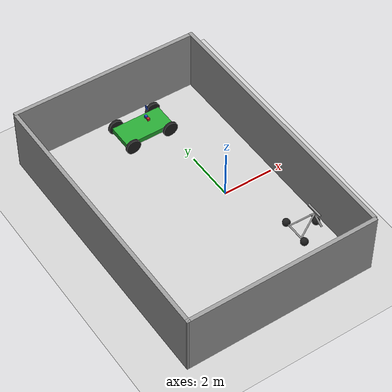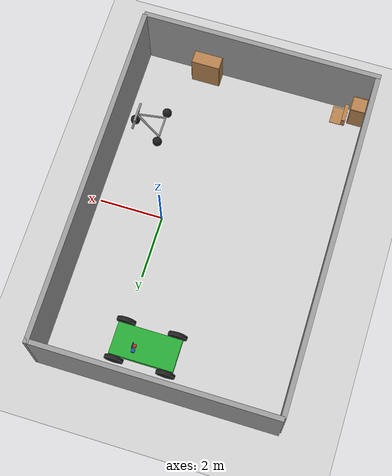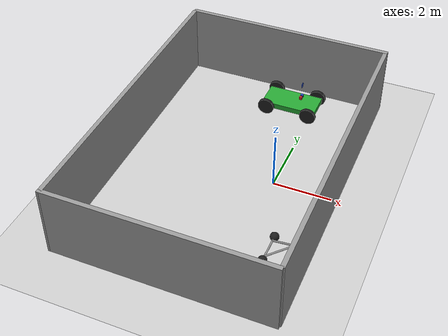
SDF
<sdf version="1.6">
 <world name="default">
  <light name="sun" type="directional">
   <pose>0 0 10 0 -0 0</pose>
   <diffuse>0.8 0.8 0.8 1</diffuse>
   <specular>0.2 0.2 0.2 1</specular>
   <attenuation>
    <range>1000</range>
    <constant>0.9</constant>
    <linear>0.01</linear>
    <quadratic>0.001</quadratic>
   </attenuation>
   <direction>-0.5 0.1 -0.9</direction>
  </light>
  <model name="ground_plane">
   <static>1</static>
   <link name="link">
    <collision name="collision">
     <geometry><plane><normal>0 0 1</normal><size>100 100</size></plane></geometry>
     <surface><friction><ode><mu>100</mu><mu2>50</mu2></ode></friction></surface>
    </collision>
    <visual name="visual">
     <cast_shadows>0</cast_shadows>
     <geometry><plane><normal>0 0 1</normal><size>100 100</size></plane></geometry>
     <material>
      <script><uri>file://media/materials/scripts/gazebo.material</uri><name>Gazebo/Grey</name></script>
     </material>
    </visual>
    <velocity_decay><linear>0</linear><angular>0</angular></velocity_decay>
   </link>
  </model>
  <physics name="default_physics" default="0" type="ode">
   <max_step_size>0.001</max_step_size>
   <real_time_factor>1</real_time_factor>
   <real_time_update_rate>1000</real_time_update_rate>
  </physics>
  <scene><ambient>0.4 0.4 0.4 1</ambient><background>0.7 0.7 0.7 1</background><shadows>1</shadows></scene>
  <spherical_coordinates>
   <surface_model>EARTH_WGS84</surface_model>
   <latitude_deg>0</latitude_deg>
   <longitude_deg>0</longitude_deg>
   <elevation>0</elevation>
   <heading_deg>0</heading_deg>
  </spherical_coordinates>
  <gravity>0 0 -9.8</gravity>
  <magnetic_field>6e-06 2.3e-05 -4.2e-05</magnetic_field>
  <atmosphere type="adiabatic"/>
  <model name="rectwall">
   <pose>-1.55006 -0.03167 0 0 -0 0</pose>
   <link name="Wall_11">
    <collision name="Wall_11_Collision">
     <geometry><box><size>7.5 0.15 2.5</size></box></geometry>
     <pose>0 0 1.25 0 -0 0</pose>
    </collision>
    <visual name="Wall_11_Visual">
     <pose>0 0 1.25 0 -0 0</pose>
     <geometry><box><size>7.5 0.15 2.5</size></box></geometry>
     <material>
      <script><uri>file://media/materials/scripts/gazebo.material</uri><name>Gazebo/Grey</name></script>
      <ambient>1 1 1 1</ambient>
     </material>
     <meta><layer>0</layer></meta>
    </visual>
    <pose>0.001539 5.3704 0 0 -0 3.14159</pose>
   </link>
   <link name="Wall_13">
    <collision name="Wall_13_Collision">
     <geometry><box><size>7.5 0.15 2.5</size></box></geometry>
     <pose>0 0 1.25 0 -0 0</pose>
    </collision>
    <visual name="Wall_13_Visual">
     <pose>0 0 1.25 0 -0 0</pose>
     <geometry><box><size>7.5 0.15 2.5</size></box></geometry>
     <material>
      <script><uri>file://media/materials/scripts/gazebo.material</uri><name>Gazebo/Grey</name></script>
      <ambient>1 1 1 1</ambient>
     </material>
     <meta><layer>0</layer></meta>
    </visual>
    <pose>-0.001539 -5.3704 0 0 -0 0</pose>
   </link>
   <link name="Wall_6">
    <collision name="Wall_6_Collision">
     <geometry><box><size>10.7903 0.15 2.5</size></box></geometry>
     <pose>0 0 1.25 0 -0 0</pose>
    </collision>
    <visual name="Wall_6_Visual">
     <pose>0 0 1.25 0 -0 0</pose>
     <geometry><box><size>10.7903 0.15 2.5</size></box></geometry>
     <material>
      <script><uri>file://media/materials/scripts/gazebo.material</uri><name>Gazebo/Grey</name></script>
      <ambient>1 1 1 1</ambient>
     </material>
     <meta><layer>0</layer></meta>
    </visual>
    <pose>-3.69665 -0.050284 0 0 0 -1.56702</pose>
   </link>
   <link name="Wall_8">
    <collision name="Wall_8_Collision">
     <geometry><box><size>10.7903 0.15 2.5</size></box></geometry>
     <pose>0 0 1.25 0 -0 0</pose>
    </collision>
    <visual name="Wall_8_Visual">
     <pose>0 0 1.25 0 -0 0</pose>
     <geometry><box><size>10.7903 0.15 2.5</size></box></geometry>
     <material>
      <script><uri>file://media/materials/scripts/gazebo.material</uri><name>Gazebo/Grey</name></script>
      <ambient>1 1 1 1</ambient>
     </material>
     <meta><layer>0</layer></meta>
    </visual>
    <pose>3.69665 0.050284 0 0 -0 1.57458</pose>
   </link>
   <static>1</static>
  </model>
  <model name="cabinet_clone">
   <static>1</static>
   <link name="cabinet_bottom_plate">
    <inertial>
     <pose>0 0 -1 0 -0 0</pose>
     <inertia><ixx>2.05</ixx><ixy>0</ixy><ixz>0</ixz><iyy>2.05</iyy><iyz>0</iyz><izz>2.05</izz></inertia>
     <mass>25</mass>
    </inertial>
    <collision name="cabinet_bottom_plate_geom">
     <pose>0 0 0.01 0 -0 0</pose>
     <geometry><box><size>0.45 0.45 0.02</size></box></geometry>
    </collision>
    <visual name="cabinet_bottom_plate_geom_visual">
     <pose>0 0 0.01 0 -0 0</pose>
     <geometry><box><size>0.45 0.45 0.02</size></box></geometry>
     <material>
      <script><uri>file://media/materials/scripts/gazebo.material</uri><name>Gazebo/Wood</name></script>
     </material>
    </visual>
    <collision name="cabinet_bottom_plate_geom_cabinet_back_plate">
     <pose>0.235 0 0.51 0 -0 0</pose>
     <geometry><box><size>0.02 0.45 1.02</size></box></geometry>
    </collision>
    <visual name="cabinet_bottom_plate_geom_cabinet_back_plate_visual">
     <pose>0.235 0 0.51 0 -0 0</pose>
     <geometry><box><size>0.02 0.45 1.02</size></box></geometry>
     <material>
      <script><uri>file://media/materials/scripts/gazebo.material</uri><name>Gazebo/Wood</name></script>
     </material>
    </visual>
    <collision name="cabinet_bottom_plate_geom_cabinet_left_plate">
     <pose>0 0.235 0.51 0 -0 0</pose>
     <geometry><box><size>0.45 0.02 1.02</size></box></geometry>
    </collision>
    <visual name="cabinet_bottom_plate_geom_cabinet_left_plate_visual">
     <pose>0 0.235 0.51 0 -0 0</pose>
     <geometry><box><size>0.45 0.02 1.02</size></box></geometry>
     <material>
      <script><uri>file://media/materials/scripts/gazebo.material</uri><name>Gazebo/Wood</name></script>
     </material>
    </visual>
    <collision name="cabinet_bottom_plate_geom_cabinet_middle_plate">
     <pose>0 0 0.51 0 -0 0</pose>
     <geometry><box><size>0.45 0.45 0.02</size></box></geometry>
    </collision>
    <visual name="cabinet_bottom_plate_geom_cabinet_middle_plate_visual">
     <pose>0 0 0.51 0 -0 0</pose>
     <geometry><box><size>0.45 0.45 0.02</size></box></geometry>
     <material>
      <script><uri>file://media/materials/scripts/gazebo.material</uri><name>Gazebo/Wood</name></script>
     </material>
    </visual>
    <collision name="cabinet_bottom_plate_geom_cabinet_right_plate">
     <pose>0 -0.235 0.51 0 -0 0</pose>
     <geometry><box><size>0.45 0.02 1.02</size></box></geometry>
    </collision>
    <visual name="cabinet_bottom_plate_geom_cabinet_right_plate_visual">
     <pose>0 -0.235 0.51 0 -0 0</pose>
     <geometry><box><size>0.45 0.02 1.02</size></box></geometry>
     <material>
      <script><uri>file://media/materials/scripts/gazebo.material</uri><name>Gazebo/Wood</name></script>
     </material>
    </visual>
    <collision name="cabinet_bottom_plate_geom_cabinet_top_plate">
     <pose>0 0 1.01 0 -0 0</pose>
     <geometry><box><size>0.45 0.45 0.02</size></box></geometry>
    </collision>
    <visual name="cabinet_bottom_plate_geom_cabinet_top_plate_visual">
     <pose>0 0 1.01 0 -0 0</pose>
     <geometry><box><size>0.45 0.45 0.02</size></box></geometry>
     <material>
      <script><uri>file://media/materials/scripts/gazebo.material</uri><name>Gazebo/Wood</name></script>
     </material>
    </visual>
   </link>
   <pose>-4.91383 -5.06603 0 0 -0 0</pose>
  </model>
  <model name="wooden_case">
   <link name="base">
    <pose>0 0 0.024 0 -0 0</pose>
    <inertial>
     <pose>-0.022184 0 0.171592 0 -0 0</pose>
     <mass>3.96264</mass>
     <inertia>
      <ixx>0.213536</ixx>
      <ixy>0</ixy>
      <ixz>0.000779377</ixz>
      <iyy>0.0708943</iyy>
      <iyz>0</iyz>
      <izz>0.154604</izz>
     </inertia>
    </inertial>
    <collision name="collision_back">
     <pose>-0.053975 0 0.1778 0 -0 0</pose>
     <geometry><box><size>0.01905 0.5461 0.3175</size></box></geometry>
     <surface>
      <contact>
       <poissons_ratio>0.347</poissons_ratio>
       <elastic_modulus>8.8e+09</elastic_modulus>
       <ode><kp>100000</kp><kd>100</kd><max_vel>100</max_vel><min_depth>0.001</min_depth></ode>
      </contact>
      <friction>
       <torsional>
        <coefficient>1</coefficient>
        <use_patch_radius>0</use_patch_radius>
        <surface_radius>0.01</surface_radius>
       </torsional>
      </friction>
     </surface>
    </collision>
    <visual name="visual_back">
     <pose>-0.053975 0 0.1778 0 -0 0</pose>
     <geometry><box><size>0.01905 0.5461 0.3175</size></box></geometry>
     <material>
      <script><uri>file://media/materials/scripts/gazebo.material</uri><name>Gazebo/Wood</name></script>
     </material>
    </visual>
    <collision name="collision_bottom">
     <pose>0 0 0.009525 0 -0 0</pose>
     <geometry><box><size>0.127 0.5842 0.01905</size></box></geometry>
     <surface>
      <contact>
       <poissons_ratio>0.347</poissons_ratio>
       <elastic_modulus>8.8e+09</elastic_modulus>
       <ode><kp>100000</kp><kd>100</kd><max_vel>100</max_vel><min_depth>0.001</min_depth></ode>
      </contact>
      <friction>
       <torsional>
        <coefficient>1</coefficient>
        <use_patch_radius>0</use_patch_radius>
        <surface_radius>0.01</surface_radius>
       </torsional>
      </friction>
     </surface>
    </collision>
    <visual name="visual_bottom">
     <pose>0 0 0.009525 0 -0 0</pose>
     <geometry><box><size>0.127 0.5842 0.01905</size></box></geometry>
     <material>
      <script><uri>file://media/materials/scripts/gazebo.material</uri><name>Gazebo/Wood</name></script>
     </material>
    </visual>
    <collision name="collision_top">
     <pose>0 0 0.346075 0 -0 0</pose>
     <geometry><box><size>0.127 0.5842 0.01905</size></box></geometry>
     <surface>
      <contact>
       <poissons_ratio>0.347</poissons_ratio>
       <elastic_modulus>8.8e+09</elastic_modulus>
       <ode><kp>100000</kp><kd>100</kd><max_vel>100</max_vel><min_depth>0.001</min_depth></ode>
      </contact>
      <friction>
       <torsional>
        <coefficient>1</coefficient>
        <use_patch_radius>0</use_patch_radius>
        <surface_radius>0.01</surface_radius>
       </torsional>
      </friction>
     </surface>
    </collision>
    <visual name="visual_top">
     <pose>0 0 0.346075 0 -0 0</pose>
     <geometry><box><size>0.127 0.5842 0.01905</size></box></geometry>
     <material>
      <script><uri>file://media/materials/scripts/gazebo.material</uri><name>Gazebo/Wood</name></script>
     </material>
    </visual>
    <collision name="collision_left">
     <pose>0 -0.282575 0.1778 0 -0 0</pose>
     <geometry><box><size>0.127 0.01905 0.3175</size></box></geometry>
     <surface>
      <contact>
       <poissons_ratio>0.347</poissons_ratio>
       <elastic_modulus>8.8e+09</elastic_modulus>
       <ode><kp>100000</kp><kd>100</kd><max_vel>100</max_vel><min_depth>0.001</min_depth></ode>
      </contact>
      <friction>
       <torsional>
        <coefficient>1</coefficient>
        <use_patch_radius>0</use_patch_radius>
        <surface_radius>0.01</surface_radius>
       </torsional>
      </friction>
     </surface>
    </collision>
    <visual name="visual_left">
     <pose>0 -0.282575 0.1778 0 -0 0</pose>
     <geometry><box><size>0.127 0.01905 0.3175</size></box></geometry>
     <material>
      <script><uri>file://media/materials/scripts/gazebo.material</uri><name>Gazebo/Wood</name></script>
     </material>
    </visual>
    <collision name="collision_right">
     <pose>0 0.282575 0.1778 0 -0 0</pose>
     <geometry><box><size>0.127 0.01905 0.3175</size></box></geometry>
     <surface>
      <contact>
       <poissons_ratio>0.347</poissons_ratio>
       <elastic_modulus>8.8e+09</elastic_modulus>
       <ode><kp>100000</kp><kd>100</kd><max_vel>100</max_vel><min_depth>0.001</min_depth></ode>
      </contact>
      <friction>
       <torsional>
        <coefficient>1</coefficient>
        <use_patch_radius>0</use_patch_radius>
        <surface_radius>0.01</surface_radius>
       </torsional>
      </friction>
     </surface>
    </collision>
    <visual name="visual_right">
     <pose>0 0.282575 0.1778 0 -0 0</pose>
     <geometry><box><size>0.127 0.01905 0.3175</size></box></geometry>
     <material>
      <script><uri>file://media/materials/scripts/gazebo.material</uri><name>Gazebo/Wood</name></script>
     </material>
    </visual>
    <collision name="collision_block_left">
     <pose>0.0095 -0.2151 -0.012 0 -0 0</pose>
     <geometry><box><size>0.108 0.05 0.024</size></box></geometry>
     <surface>
      <contact>
       <poissons_ratio>0.347</poissons_ratio>
       <elastic_modulus>8.8e+09</elastic_modulus>
       <ode><kp>100000</kp><kd>100</kd><max_vel>100</max_vel><min_depth>0.001</min_depth></ode>
      </contact>
      <friction>
       <torsional>
        <coefficient>1</coefficient>
        <use_patch_radius>0</use_patch_radius>
        <surface_radius>0.01</surface_radius>
       </torsional>
      </friction>
     </surface>
    </collision>
    <visual name="visual_block_left">
     <pose>0.0095 -0.2151 -0.012 0 -0 0</pose>
     <geometry><box><size>0.108 0.05 0.024</size></box></geometry>
     <material>
      <script><uri>file://media/materials/scripts/gazebo.material</uri><name>Gazebo/Wood</name></script>
     </material>
    </visual>
    <collision name="collision_block_right">
     <pose>0.0095 0.2151 -0.012 0 -0 0</pose>
     <geometry><box><size>0.108 0.05 0.024</size></box></geometry>
     <surface>
      <contact>
       <poissons_ratio>0.347</poissons_ratio>
       <elastic_modulus>8.8e+09</elastic_modulus>
       <ode><kp>100000</kp><kd>100</kd><max_vel>100</max_vel><min_depth>0.001</min_depth></ode>
      </contact>
      <friction>
       <torsional>
        <coefficient>1</coefficient>
        <use_patch_radius>0</use_patch_radius>
        <surface_radius>0.01</surface_radius>
       </torsional>
      </friction>
     </surface>
    </collision>
    <visual name="visual_block_right">
     <pose>0.0095 0.2151 -0.012 0 -0 0</pose>
     <geometry><box><size>0.108 0.05 0.024</size></box></geometry>
     <material>
      <script><uri>file://media/materials/scripts/gazebo.material</uri><name>Gazebo/Wood</name></script>
     </material>
    </visual>
   </link>
   <link name="lid">
    <pose>0.243775 0 0.009525 0 -0 0</pose>
    <inertial>
     <mass>1.97874</mass>
     <inertia>
      <ixx>0.0563367</ixx>
      <ixy>0</ixy>
      <ixz>0</ixz>
      <iyy>0.020911</iyy>
      <iyz>0</iyz>
      <izz>0.0771281</izz>
     </inertia>
    </inertial>
    <collision name="collision">
     <geometry><box><size>0.3556 0.5842 0.01905</size></box></geometry>
     <surface>
      <contact>
       <poissons_ratio>0.347</poissons_ratio>
       <elastic_modulus>8.8e+09</elastic_modulus>
       <ode><kp>100000</kp><kd>100</kd><max_vel>100</max_vel><min_depth>0.001</min_depth></ode>
      </contact>
      <friction>
       <torsional>
        <coefficient>1</coefficient>
        <use_patch_radius>0</use_patch_radius>
        <surface_radius>0.01</surface_radius>
       </torsional>
      </friction>
     </surface>
    </collision>
    <visual name="visual">
     <geometry><box><size>0.3556 0.5842 0.01905</size></box></geometry>
     <material>
      <script><uri>file://media/materials/scripts/gazebo.material</uri><name>Gazebo/Wood</name></script>
     </material>
    </visual>
    <visual name="tee_nut_1">
     <pose>0.122 -0.216 0 0 -0 0</pose>
     <geometry><cylinder><radius>0.00635</radius><length>0.0192405</length></cylinder></geometry>
     <material>
      <script><uri>file://media/materials/scripts/gazebo.material</uri><name>Gazebo/Grey</name></script>
     </material>
    </visual>
    <visual name="tee_nut_2">
     <pose>0.122 -0.088 0 0 -0 0</pose>
     <geometry><cylinder><radius>0.00635</radius><length>0.0192405</length></cylinder></geometry>
     <material>
      <script><uri>file://media/materials/scripts/gazebo.material</uri><name>Gazebo/Grey</name></script>
     </material>
    </visual>
    <visual name="tee_nut_3">
     <pose>0.122 0.088 0 0 -0 0</pose>
     <geometry><cylinder><radius>0.00635</radius><length>0.0192405</length></cylinder></geometry>
     <material>
      <script><uri>file://media/materials/scripts/gazebo.material</uri><name>Gazebo/Grey</name></script>
     </material>
    </visual>
    <visual name="tee_nut_4">
     <pose>0.122 0.216 0 0 -0 0</pose>
     <geometry><cylinder><radius>0.00635</radius><length>0.0192405</length></cylinder></geometry>
     <material>
      <script><uri>file://media/materials/scripts/gazebo.material</uri><name>Gazebo/Grey</name></script>
     </material>
    </visual>
   </link>
   <joint name="lid_hinge" type="revolute">
    <pose>-0.1778 0 0.01905 0 -0 0</pose>
    <parent>base</parent>
    <child>lid</child>
    <axis>
     <xyz>0 1 0</xyz>
     <limit><upper>0.523599</upper><lower>-1.5708</lower></limit>
     <use_parent_model_frame>0</use_parent_model_frame>
     <dynamics><spring_reference>0</spring_reference><spring_stiffness>0</spring_stiffness></dynamics>
    </axis>
   </joint>
   <pose>-4.55455 -4.99191 -0.001057 0 -0.000429 0</pose>
  </model>
  <model name="car">
   <link name="chassis">
    <pose>0 0 0.3 0 -0 0</pose>
    <collision name="collision"><geometry><box><size>2 1 0.2</size></box></geometry></collision>
    <visual name="visual">
     <geometry><box><size>2 1 0.2</size></box></geometry>
     <material>
      <script><uri>file://media/materials/scripts/gazebo.material</uri><name>Gazebo/Green</name></script>
     </material>
    </visual>
    <inertial>
     <inertia><ixx>1</ixx><ixy>0</ixy><ixz>0</ixz><iyy>1</iyy><iyz>0</iyz><izz>1</izz></inertia>
     <mass>1</mass>
    </inertial>
   </link>
   <link name="front_left_wheel">
    <pose>0.8 0.6 0.3 -0 1.5707 1.5707</pose>
    <collision name="collision">
     <geometry><cylinder><radius>0.3</radius><length>0.1</length></cylinder></geometry>
    </collision>
    <visual name="visual">
     <geometry><cylinder><radius>0.3</radius><length>0.1</length></cylinder></geometry>
     <material>
      <script><uri>file://media/materials/scripts/gazebo.material</uri><name>Gazebo/Black</name></script>
     </material>
    </visual>
    <inertial>
     <inertia><ixx>1</ixx><ixy>0</ixy><ixz>0</ixz><iyy>1</iyy><iyz>0</iyz><izz>1</izz></inertia>
     <mass>1</mass>
    </inertial>
   </link>
   <link name="front_right_wheel">
    <pose>0.8 -0.6 0.3 -0 1.5707 1.5707</pose>
    <collision name="collision">
     <geometry><cylinder><radius>0.3</radius><length>0.1</length></cylinder></geometry>
    </collision>
    <visual name="visual">
     <geometry><cylinder><radius>0.3</radius><length>0.1</length></cylinder></geometry>
     <material>
      <script><uri>file://media/materials/scripts/gazebo.material</uri><name>Gazebo/Black</name></script>
     </material>
    </visual>
    <inertial>
     <inertia><ixx>1</ixx><ixy>0</ixy><ixz>0</ixz><iyy>1</iyy><iyz>0</iyz><izz>1</izz></inertia>
     <mass>1</mass>
    </inertial>
   </link>
   <link name="back_right_wheel">
    <pose>-0.8 -0.6 0.3 -0 1.5707 1.5707</pose>
    <collision name="collision">
     <geometry><cylinder><radius>0.3</radius><length>0.1</length></cylinder></geometry>
    </collision>
    <visual name="visual">
     <geometry><cylinder><radius>0.3</radius><length>0.1</length></cylinder></geometry>
     <material>
      <script><uri>file://media/materials/scripts/gazebo.material</uri><name>Gazebo/Black</name></script>
     </material>
    </visual>
    <inertial>
     <inertia><ixx>1</ixx><ixy>0</ixy><ixz>0</ixz><iyy>1</iyy><iyz>0</iyz><izz>1</izz></inertia>
     <mass>1</mass>
    </inertial>
   </link>
   <link name="back_left_wheel">
    <pose>-0.8 0.6 0.3 -0 1.5707 1.5707</pose>
    <collision name="collision">
     <geometry><cylinder><radius>0.3</radius><length>0.1</length></cylinder></geometry>
    </collision>
    <visual name="visual">
     <geometry><cylinder><radius>0.3</radius><length>0.1</length></cylinder></geometry>
     <material>
      <script><uri>file://media/materials/scripts/gazebo.material</uri><name>Gazebo/Black</name></script>
     </material>
    </visual>
    <inertial>
     <inertia><ixx>1</ixx><ixy>0</ixy><ixz>0</ixz><iyy>1</iyy><iyz>0</iyz><izz>1</izz></inertia>
     <mass>1</mass>
    </inertial>
   </link>
   <link name="gas_pedal">
    <pose>0.3 0.1 0.5 0 -0 0</pose>
    <collision name="collision"><geometry><box><size>0.1 0.1 0.1</size></box></geometry></collision>
    <visual name="visual">
     <geometry><box><size>0.1 0.1 0.1</size></box></geometry>
     <material>
      <script><uri>file://media/materials/scripts/gazebo.material</uri><name>Gazebo/Red</name></script>
     </material>
    </visual>
    <inertial>
     <inertia><ixx>1</ixx><ixy>0</ixy><ixz>0</ixz><iyy>1</iyy><iyz>0</iyz><izz>1</izz></inertia>
     <mass>1</mass>
    </inertial>
   </link>
   <link name="brake_pedal">
    <pose>0.3 0.25 0.5 0 -0 0</pose>
    <collision name="collision"><geometry><box><size>0.1 0.1 0.1</size></box></geometry></collision>
    <visual name="visual">
     <geometry><box><size>0.1 0.1 0.1</size></box></geometry>
     <material>
      <script><uri>file://media/materials/scripts/gazebo.material</uri><name>Gazebo/Blue</name></script>
     </material>
    </visual>
    <inertial>
     <inertia><ixx>1</ixx><ixy>0</ixy><ixz>0</ixz><iyy>1</iyy><iyz>0</iyz><izz>1</izz></inertia>
     <mass>1</mass>
    </inertial>
   </link>
   <link name="steering_wheel">
    <pose>0.3 0.2 1 0 1.5707 0</pose>
    <collision name="collision">
     <geometry><cylinder><radius>0.1</radius><length>0.01</length></cylinder></geometry>
    </collision>
    <visual name="visual">
     <geometry><cylinder><radius>0.1</radius><length>0.01</length></cylinder></geometry>
     <material>
      <script><uri>file://media/materials/scripts/gazebo.material</uri><name>Gazebo/Blue</name></script>
     </material>
    </visual>
    <inertial>
     <inertia><ixx>1</ixx><ixy>0</ixy><ixz>0</ixz><iyy>1</iyy><iyz>0</iyz><izz>1</izz></inertia>
     <mass>1</mass>
    </inertial>
   </link>
   <joint name="gas_joint" type="prismatic">
    <parent>chassis</parent>
    <child>gas_pedal</child>
    <axis>
     <xyz>1 0 0</xyz>
     <limit><lower>0</lower><upper>0.2</upper></limit>
     <use_parent_model_frame>1</use_parent_model_frame>
     <dynamics><spring_reference>0</spring_reference><spring_stiffness>0</spring_stiffness></dynamics>
    </axis>
   </joint>
   <joint name="brake_joint" type="prismatic">
    <parent>chassis</parent>
    <child>brake_pedal</child>
    <axis>
     <xyz>1 0 0</xyz>
     <limit><lower>0</lower><upper>0.2</upper></limit>
     <use_parent_model_frame>1</use_parent_model_frame>
     <dynamics><spring_reference>0</spring_reference><spring_stiffness>0</spring_stiffness></dynamics>
    </axis>
   </joint>
   <joint name="steering_joint" type="revolute">
    <parent>chassis</parent>
    <child>steering_wheel</child>
    <axis>
     <xyz>1 0 0</xyz>
     <limit><lower>-7.853</lower><upper>7.853</upper></limit>
     <use_parent_model_frame>1</use_parent_model_frame>
     <dynamics><spring_reference>0</spring_reference><spring_stiffness>0</spring_stiffness></dynamics>
    </axis>
   </joint>
   <joint name="front_left_joint" type="revolute2">
    <parent>chassis</parent>
    <child>front_left_wheel</child>
    <axis>
     <xyz>0 0 1</xyz>
     <limit><lower>8.63927e-06</lower><upper>8.63927e-06</upper></limit>
     <use_parent_model_frame>1</use_parent_model_frame>
     <dynamics><spring_reference>0</spring_reference><spring_stiffness>0</spring_stiffness></dynamics>
    </axis>
    <axis2>
     <xyz>0 1 0</xyz>
     <use_parent_model_frame>1</use_parent_model_frame>
     <dynamics><spring_reference>0</spring_reference><spring_stiffness>0</spring_stiffness></dynamics>
    </axis2>
    <physics><ode><limit><cfm>0</cfm><erp>0.9</erp></limit></ode></physics>
   </joint>
   <joint name="front_right_joint" type="revolute2">
    <parent>chassis</parent>
    <child>front_right_wheel</child>
    <axis>
     <xyz>0 0 1</xyz>
     <limit><lower>8.63927e-06</lower><upper>8.63927e-06</upper></limit>
     <use_parent_model_frame>1</use_parent_model_frame>
     <dynamics><spring_reference>0</spring_reference><spring_stiffness>0</spring_stiffness></dynamics>
    </axis>
    <axis2>
     <xyz>0 1 0</xyz>
     <use_parent_model_frame>1</use_parent_model_frame>
     <dynamics><spring_reference>0</spring_reference><spring_stiffness>0</spring_stiffness></dynamics>
    </axis2>
    <physics><ode><limit><cfm>0</cfm><erp>0.9</erp></limit></ode></physics>
   </joint>
   <joint name="back_right_joint" type="revolute2">
    <parent>chassis</parent>
    <child>back_right_wheel</child>
    <axis>
     <xyz>0 0 1</xyz>
     <limit><lower>0</lower><upper>0</upper></limit>
     <use_parent_model_frame>1</use_parent_model_frame>
     <dynamics><spring_reference>0</spring_reference><spring_stiffness>0</spring_stiffness></dynamics>
    </axis>
    <axis2>
     <xyz>0 1 0</xyz>
     <use_parent_model_frame>1</use_parent_model_frame>
     <dynamics><spring_reference>0</spring_reference><spring_stiffness>0</spring_stiffness></dynamics>
    </axis2>
    <physics><ode><limit><cfm>0</cfm><erp>0.9</erp></limit></ode></physics>
   </joint>
   <joint name="back_left_joint" type="revolute2">
    <parent>chassis</parent>
    <child>back_left_wheel</child>
    <axis>
     <xyz>0 0 1</xyz>
     <limit><lower>0</lower><upper>0</upper></limit>
     <use_parent_model_frame>1</use_parent_model_frame>
     <dynamics><spring_reference>0</spring_reference><spring_stiffness>0</spring_stiffness></dynamics>
    </axis>
    <axis2>
     <xyz>0 1 0</xyz>
     <use_parent_model_frame>1</use_parent_model_frame>
     <dynamics><spring_reference>0</spring_reference><spring_stiffness>0</spring_stiffness></dynamics>
    </axis2>
    <physics><ode><limit><cfm>0</cfm><erp>0.9</erp></limit></ode></physics>
   </joint>
   <plugin name="vehicle" filename="libVehiclePlugin.so">
    <front_left>front_left_joint</front_left>
    <front_right>front_right_joint</front_right>
    <back_left>back_left_joint</back_left>
    <back_right>back_right_joint</back_right>
    <gas>gas_joint</gas>
    <brake>brake_joint</brake>
    <steering>steering_joint</steering>
    <front_power>10</front_power>
    <rear_power>10</rear_power>
    <tire_angle_range>0.5</tire_angle_range>
    <max_speed>10</max_speed>
    <aero_load>0.1</aero_load>
   </plugin>
   <pose>-0.826118 4.10496 -0.002615 -0.000273 0.000907 0.000751</pose>
  </model>
  <model name="bookshelf">
   <static>1</static>
   <link name="link">
    <inertial><mass>1</mass></inertial>
    <collision name="back">
     <pose>0 0.005 0.6 0 -0 0</pose>
     <geometry><box><size>0.9 0.01 1.2</size></box></geometry>
    </collision>
    <visual name="visual1">
     <pose>0 0.005 0.6 0 -0 0</pose>
     <geometry><box><size>0.9 0.01 1.2</size></box></geometry>
     <material>
      <script><uri>file://media/materials/scripts/gazebo.material</uri><name>Gazebo/Wood</name></script>
     </material>
    </visual>
    <collision name="left_side">
     <pose>0.45 -0.195 0.6 0 -0 0</pose>
     <geometry><box><size>0.02 0.4 1.2</size></box></geometry>
    </collision>
    <visual name="visual2">
     <pose>0.45 -0.195 0.6 0 -0 0</pose>
     <geometry><box><size>0.02 0.4 1.2</size></box></geometry>
     <material>
      <script><uri>file://media/materials/scripts/gazebo.material</uri><name>Gazebo/Wood</name></script>
     </material>
    </visual>
    <collision name="right_side">
     <pose>-0.45 -0.195 0.6 0 -0 0</pose>
     <geometry><box><size>0.02 0.4 1.2</size></box></geometry>
    </collision>
    <visual name="visual3">
     <pose>-0.45 -0.195 0.6 0 -0 0</pose>
     <geometry><box><size>0.02 0.4 1.2</size></box></geometry>
     <material>
      <script><uri>file://media/materials/scripts/gazebo.material</uri><name>Gazebo/Wood</name></script>
     </material>
    </visual>
    <collision name="bottom">
     <pose>0 -0.195 0.03 0 -0 0</pose>
     <geometry><box><size>0.88 0.4 0.06</size></box></geometry>
    </collision>
    <visual name="visual4">
     <pose>0 -0.195 0.03 0 -0 0</pose>
     <geometry><box><size>0.88 0.4 0.06</size></box></geometry>
     <material>
      <script><uri>file://media/materials/scripts/gazebo.material</uri><name>Gazebo/Wood</name></script>
     </material>
    </visual>
    <collision name="top">
     <pose>0 -0.195 1.19 0 -0 0</pose>
     <geometry><box><size>0.88 0.4 0.02</size></box></geometry>
    </collision>
    <visual name="visual5">
     <pose>0 -0.195 1.19 0 -0 0</pose>
     <geometry><box><size>0.88 0.4 0.02</size></box></geometry>
     <material>
      <script><uri>file://media/materials/scripts/gazebo.material</uri><name>Gazebo/Wood</name></script>
     </material>
    </visual>
    <collision name="low_shelf">
     <pose>0 -0.195 0.43 0 -0 0</pose>
     <geometry><box><size>0.88 0.4 0.02</size></box></geometry>
    </collision>
    <visual name="visual6">
     <pose>0 -0.195 0.43 0 -0 0</pose>
     <geometry><box><size>0.88 0.4 0.02</size></box></geometry>
     <material>
      <script><uri>file://media/materials/scripts/gazebo.material</uri><name>Gazebo/Wood</name></script>
     </material>
    </visual>
    <collision name="high_shelf">
     <pose>0 -0.195 0.8 0 -0 0</pose>
     <geometry><box><size>0.88 0.4 0.02</size></box></geometry>
    </collision>
    <visual name="visual7">
     <pose>0 -0.195 0.8 0 -0 0</pose>
     <geometry><box><size>0.88 0.4 0.02</size></box></geometry>
     <material>
      <script><uri>file://media/materials/scripts/gazebo.material</uri><name>Gazebo/Wood</name></script>
     </material>
    </visual>
   </link>
   <pose>0.084789 -4.89743 0 0 -0 0</pose>
  </model>
  <model name="trisphere_cycle">
   <link name="frame">
    <pose>-0.408559 0 0.385023 0 -0.522021 0</pose>
    <inertial>
     <mass>10</mass>
     <inertia><ixx>0.228</ixx><iyy>0.743521</iyy><izz>0.965521</izz><ixy>0</ixy><ixz>0</ixz><iyz>0</iyz></inertia>
    </inertial>
    <collision name="axle_collision">
     <pose>-0.471335 0 0 1.5708 -0 0</pose>
     <geometry><cylinder><length>1.03923</length><radius>0.03</radius></cylinder></geometry>
    </collision>
    <visual name="axle_visual">
     <pose>-0.471335 0 0 1.5708 -0 0</pose>
     <geometry><cylinder><length>1.03923</length><radius>0.03</radius></cylinder></geometry>
     <material>
      <script><uri>file://media/materials/scripts/gazebo.material</uri><name>Gazebo/Grey</name></script>
     </material>
    </visual>
    <collision name="frame_left_collision">
     <pose>0 0.171552 0 -2.79253 1.57079 3.14159</pose>
     <geometry><cylinder><length>1.00317</length><radius>0.03</radius></cylinder></geometry>
    </collision>
    <visual name="frame_left_visual">
     <pose>0 0.171552 0 -2.79253 1.57079 3.14159</pose>
     <geometry><cylinder><length>1.00317</length><radius>0.03</radius></cylinder></geometry>
     <material>
      <script><uri>file://media/materials/scripts/gazebo.material</uri><name>Gazebo/Grey</name></script>
     </material>
    </visual>
    <collision name="frame_right_collision">
     <pose>0 -0.171552 0 2.79253 1.57079 -3.14159</pose>
     <geometry><cylinder><length>1.00317</length><radius>0.03</radius></cylinder></geometry>
    </collision>
    <visual name="frame_right_visual">
     <pose>0 -0.171552 0 2.79253 1.57079 -3.14159</pose>
     <geometry><cylinder><length>1.00317</length><radius>0.03</radius></cylinder></geometry>
     <material>
      <script><uri>file://media/materials/scripts/gazebo.material</uri><name>Gazebo/Grey</name></script>
     </material>
    </visual>
   </link>
   <link name="fork">
    <pose>0.041441 0 0.385023 0 -0.174533 0</pose>
    <inertial>
     <mass>3</mass>
     <inertia>
      <ixx>0.158203</ixx>
      <iyy>0.0583594</iyy>
      <izz>0.102656</izz>
      <ixy>0</ixy>
      <ixz>0</ixz>
      <iyz>0</iyz>
     </inertia>
    </inertial>
    <collision name="handlebars_collision">
     <pose>0 0 0.397748 1.5708 -0 0</pose>
     <geometry><cylinder><length>0.636396</length><radius>0.0375</radius></cylinder></geometry>
    </collision>
    <visual name="handlebars_visual">
     <pose>0 0 0.397748 1.5708 -0 0</pose>
     <geometry><cylinder><length>0.636396</length><radius>0.0375</radius></cylinder></geometry>
     <material>
      <script><uri>file://media/materials/scripts/gazebo.material</uri><name>Gazebo/Grey</name></script>
     </material>
    </visual>
    <collision name="headtube_collision">
     <pose>0 0 0.238649 0 -0 0</pose>
     <geometry><cylinder><length>0.318198</length><radius>0.0375</radius></cylinder></geometry>
    </collision>
    <visual name="headtube_visual">
     <pose>0 0 0.238649 0 -0 0</pose>
     <geometry><cylinder><length>0.318198</length><radius>0.0375</radius></cylinder></geometry>
     <material>
      <script><uri>file://media/materials/scripts/gazebo.material</uri><name>Gazebo/Grey</name></script>
     </material>
    </visual>
    <collision name="spindle_collision">
     <pose>0 0 -0.238649 1.5708 -0 0</pose>
     <geometry><cylinder><length>0.636396</length><radius>0.015</radius></cylinder></geometry>
    </collision>
    <visual name="spindle_visual">
     <pose>0 0 -0.238649 1.5708 -0 0</pose>
     <geometry><cylinder><length>0.636396</length><radius>0.015</radius></cylinder></geometry>
     <material>
      <script><uri>file://media/materials/scripts/gazebo.material</uri><name>Gazebo/Grey</name></script>
     </material>
    </visual>
    <collision name="fork_left_collision">
     <pose>0 0.159099 -0.07955 0.785398 -0 0</pose>
     <geometry><cylinder><length>0.45</length><radius>0.0375</radius></cylinder></geometry>
    </collision>
    <visual name="fork_left_visual">
     <pose>0 0.159099 -0.07955 0.785398 -0 0</pose>
     <geometry><cylinder><length>0.45</length><radius>0.0375</radius></cylinder></geometry>
     <material>
      <script><uri>file://media/materials/scripts/gazebo.material</uri><name>Gazebo/Grey</name></script>
     </material>
    </visual>
    <collision name="fork_right_collision">
     <pose>0 -0.159099 -0.07955 -0.785398 0 0</pose>
     <geometry><cylinder><length>0.45</length><radius>0.0375</radius></cylinder></geometry>
    </collision>
    <visual name="fork_right_visual">
     <pose>0 -0.159099 -0.07955 -0.785398 0 0</pose>
     <geometry><cylinder><length>0.45</length><radius>0.0375</radius></cylinder></geometry>
     <material>
      <script><uri>file://media/materials/scripts/gazebo.material</uri><name>Gazebo/Grey</name></script>
     </material>
    </visual>
   </link>
   <link name="wheel_front">
    <pose>0.082882 0 0.15 0 -0 0</pose>
    <inertial>
     <mass>0.5</mass>
     <inertia><ixx>0.0045</ixx><iyy>0.0045</iyy><izz>0.0045</izz><ixy>0</ixy><ixz>0</ixz><iyz>0</iyz></inertia>
    </inertial>
    <collision name="collision">
     <geometry><sphere><radius>0.15</radius></sphere></geometry>
     <surface><contact><ode><kp>1e+08</kp><kd>1</kd><min_depth>0.0005</min_depth></ode></contact></surface>
    </collision>
    <visual name="visual">
     <geometry><sphere><radius>0.15</radius></sphere></geometry>
     <material>
      <script><uri>file://media/materials/scripts/gazebo.material</uri><name>Gazebo/Black</name></script>
     </material>
    </visual>
   </link>
   <joint name="wheel_front_steer" type="revolute">
    <parent>frame</parent>
    <child>fork</child>
    <axis>
     <xyz>0 0 1</xyz>
     <limit><lower>-0.959931</lower><upper>0.959931</upper></limit>
     <use_parent_model_frame>0</use_parent_model_frame>
     <dynamics><spring_reference>0</spring_reference><spring_stiffness>0</spring_stiffness></dynamics>
    </axis>
   </joint>
   <joint name="wheel_front_spin" type="revolute">
    <parent>fork</parent>
    <child>wheel_front</child>
    <axis>
     <xyz>0 1 0</xyz>
     <use_parent_model_frame>0</use_parent_model_frame>
     <limit><lower>-1e+16</lower><upper>1e+16</upper></limit>
     <dynamics><spring_reference>0</spring_reference><spring_stiffness>0</spring_stiffness></dynamics>
    </axis>
   </joint>
   <link name="wheel_rear_left">
    <pose>-0.817118 0.519615 0.15 0 -0 0</pose>
    <inertial>
     <mass>0.5</mass>
     <inertia><ixx>0.0045</ixx><iyy>0.0045</iyy><izz>0.0045</izz><ixy>0</ixy><ixz>0</ixz><iyz>0</iyz></inertia>
    </inertial>
    <collision name="collision">
     <geometry><sphere><radius>0.15</radius></sphere></geometry>
     <surface><contact><ode><kp>1e+08</kp><kd>1</kd><min_depth>0.0005</min_depth></ode></contact></surface>
    </collision>
    <visual name="visual">
     <geometry><sphere><radius>0.15</radius></sphere></geometry>
     <material>
      <script><uri>file://media/materials/scripts/gazebo.material</uri><name>Gazebo/Black</name></script>
     </material>
    </visual>
   </link>
   <joint name="wheel_rear_left_spin" type="revolute">
    <parent>frame</parent>
    <child>wheel_rear_left</child>
    <axis>
     <xyz>0 1 0</xyz>
     <use_parent_model_frame>0</use_parent_model_frame>
     <limit><lower>-1e+16</lower><upper>1e+16</upper></limit>
     <dynamics><spring_reference>0</spring_reference><spring_stiffness>0</spring_stiffness></dynamics>
    </axis>
   </joint>
   <link name="wheel_rear_right">
    <pose>-0.817118 -0.519615 0.15 0 -0 0</pose>
    <inertial>
     <mass>0.5</mass>
     <inertia><ixx>0.0045</ixx><iyy>0.0045</iyy><izz>0.0045</izz><ixy>0</ixy><ixz>0</ixz><iyz>0</iyz></inertia>
    </inertial>
    <collision name="collision">
     <geometry><sphere><radius>0.15</radius></sphere></geometry>
     <surface><contact><ode><kp>1e+08</kp><kd>1</kd><min_depth>0.0005</min_depth></ode></contact></surface>
    </collision>
    <visual name="visual">
     <geometry><sphere><radius>0.15</radius></sphere></geometry>
     <material>
      <script><uri>file://media/materials/scripts/gazebo.material</uri><name>Gazebo/Black</name></script>
     </material>
    </visual>
   </link>
   <joint name="wheel_rear_right_spin" type="revolute">
    <parent>frame</parent>
    <child>wheel_rear_right</child>
    <axis>
     <xyz>0 1 0</xyz>
     <use_parent_model_frame>0</use_parent_model_frame>
     <limit><lower>-1e+16</lower><upper>1e+16</upper></limit>
     <dynamics><spring_reference>0</spring_reference><spring_stiffness>0</spring_stiffness></dynamics>
    </axis>
   </joint>
   <pose>1.73391 -2.89564 -0.000501 0 1e-06 -0.000277</pose>
  </model>
 </world>
</sdf>
